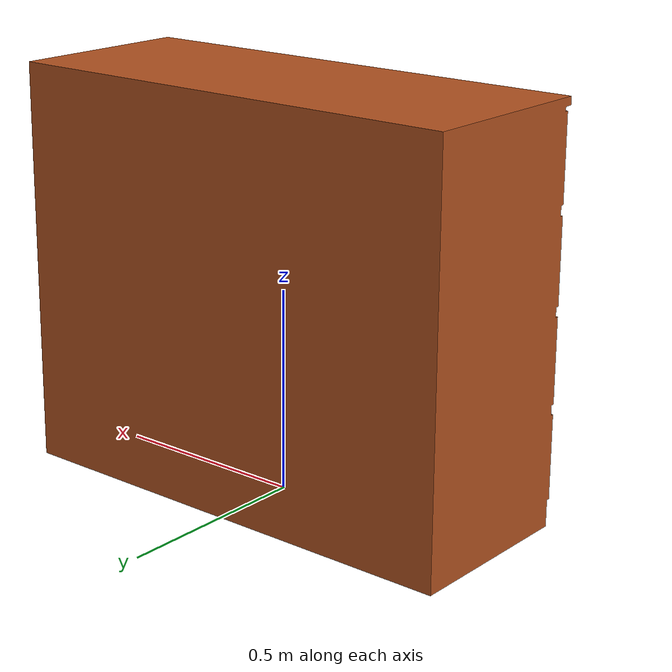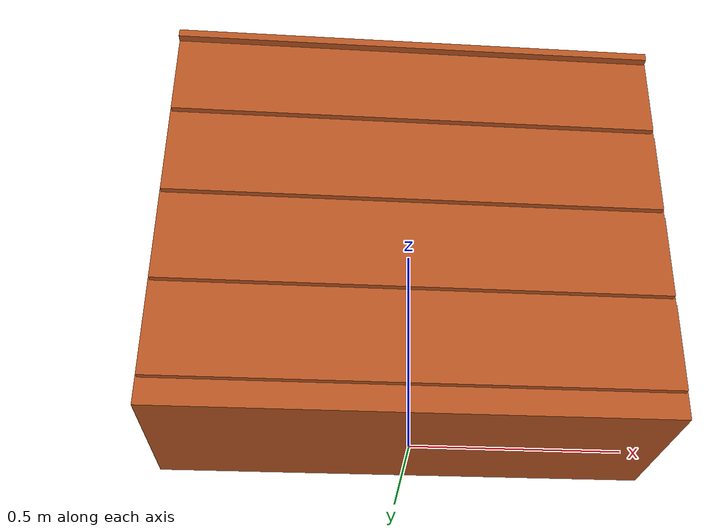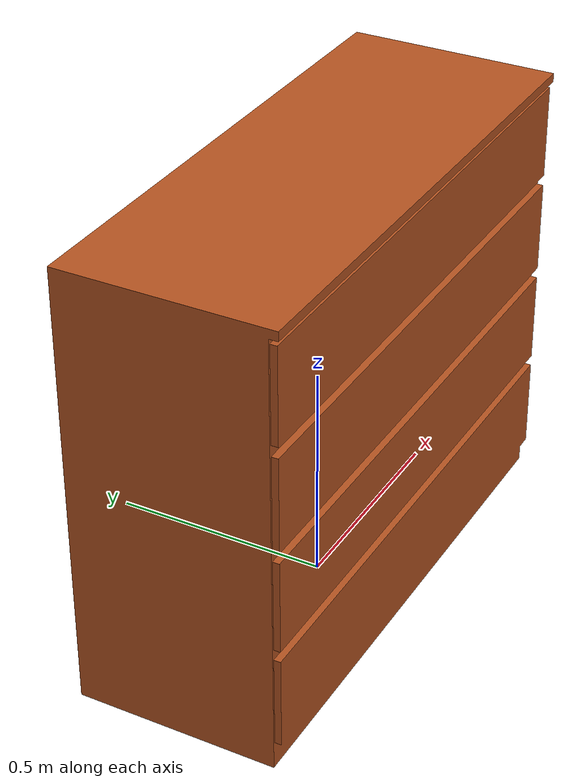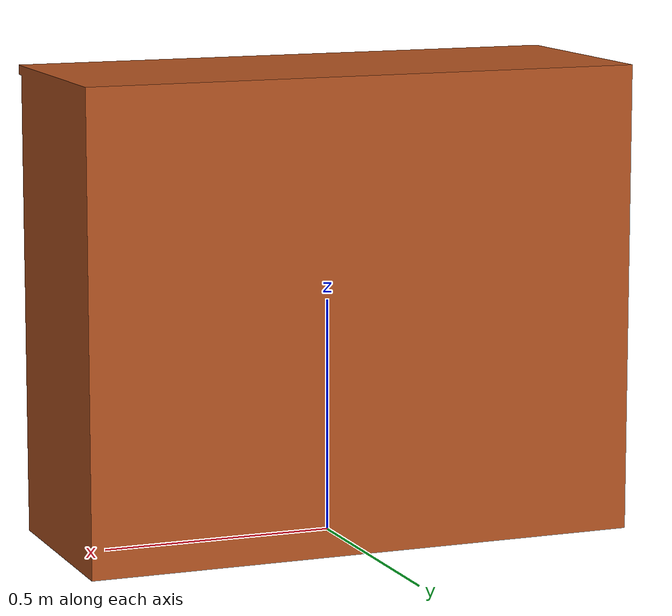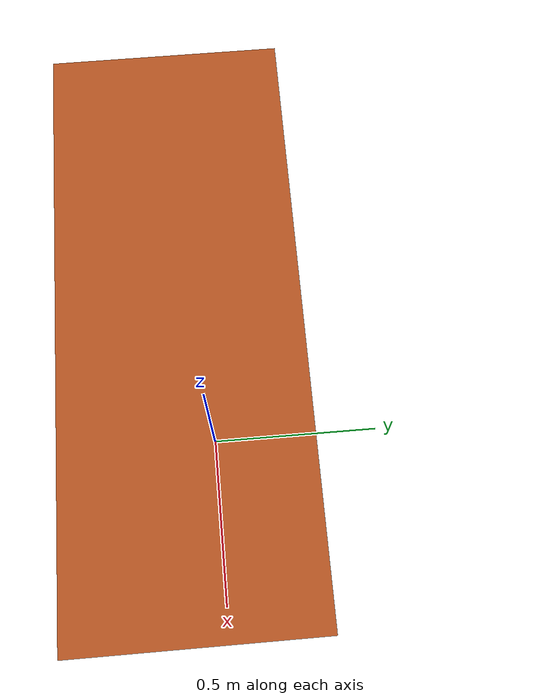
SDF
<?xml version='1.0'?>
<sdf version="1.4">
	<model name="dresser">
		<static>1</static>
		<link name="link">
			<visual name="mesh">
				<geometry>
					<mesh>
						<uri>model://meshes/dresser.dae</uri>
					</mesh>
				</geometry>
			</visual>
			<collision name="collider">
				<pose>0 0 0.5 0 0 0</pose>
				<geometry>
					<box>
						<size>1.2 0.47 1</size>
					</box>
				</geometry>
			</collision>
		</link>
	</model>
</sdf>
